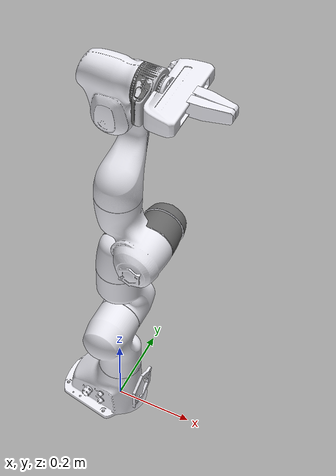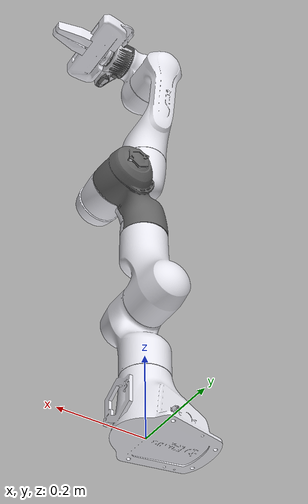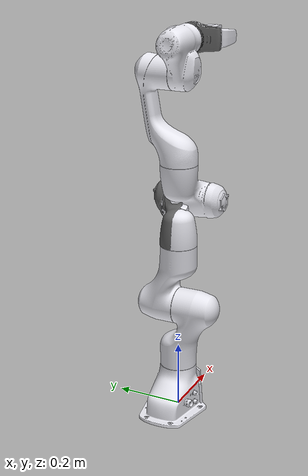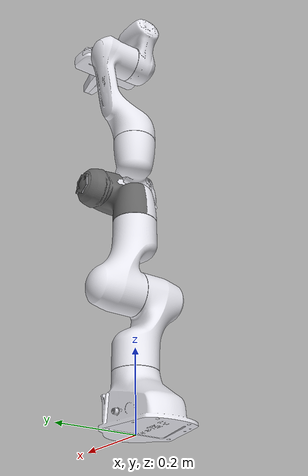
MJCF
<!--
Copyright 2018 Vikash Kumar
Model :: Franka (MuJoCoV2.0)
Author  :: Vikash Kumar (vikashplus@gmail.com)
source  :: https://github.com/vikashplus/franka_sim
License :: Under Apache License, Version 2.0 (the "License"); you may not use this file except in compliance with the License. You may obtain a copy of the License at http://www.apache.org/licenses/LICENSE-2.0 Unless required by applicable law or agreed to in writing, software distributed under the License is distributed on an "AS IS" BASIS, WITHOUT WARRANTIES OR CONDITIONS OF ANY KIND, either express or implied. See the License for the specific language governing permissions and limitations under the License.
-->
<mujoco model="franka_panda v200">
    <compiler angle="radian" meshdir=""/>
    <option timestep="0.002"/>
    <size nuser_actuator="5"/>

    <asset>
        <mesh name="link0_col" file="./meshes/collision/link0.stl"/>
        <mesh name="link1_col" file="./meshes/collision/link1.stl"/>
        <mesh name="link2_col" file="./meshes/collision/link2.stl"/>
        <mesh name="link3_col" file="./meshes/collision/link3.stl"/>
        <mesh name="link4_col" file="./meshes/collision/link4.stl"/>
        <mesh name="link5_col" file="./meshes/collision/link5.stl"/>
        <mesh name="link6_col" file="./meshes/collision/link6.stl"/>
        <mesh name="link7_col" file="./meshes/collision/link7.stl"/>
        <mesh name="hand_col" file="./meshes/collision/hand.stl"/>
        <mesh name="link0_viz" file="./meshes/visual/link0.stl"/>
        <mesh name="link1_viz" file="./meshes/visual/link1.stl"/>
        <mesh name="link2_viz" file="./meshes/visual/link2.stl"/>
        <mesh name="link3_viz" file="./meshes/visual/link3.stl"/>
        <mesh name="link3_dark_viz" file="./meshes/visual/link3_dark.stl" scale="1.01 1.01 1.01"/>
        <mesh name="link4_viz" file="./meshes/visual/link4.stl"/>
        <mesh name="link4_dark_viz" file="./meshes/visual/link4_dark.stl" scale="1.01 1.01 1.01"/>
        <mesh name="link5_viz" file="./meshes/visual/link5.stl"/>
        <mesh name="link5_dark_viz" file="./meshes/visual/link5_dark.stl" scale="1.01 1.01 1.01"/>
        <mesh name="link6_viz" file="./meshes/visual/link6.stl"/>
        <mesh name="link6_dark_viz" file="./meshes/visual/link6_dark.stl" scale="1.01 1.01 1.01"/>
        <mesh name="link7_viz" file="./meshes/visual/link7.stl"/>
        <mesh name="link7_dark_viz" file="./meshes/visual/link7_dark.stl" scale="1.01 1.01 1.01"/>
        <mesh name="hand_viz" file="./meshes/visual/hand.stl"/>

        <mesh name="finger_col" file="./meshes/collision/finger.stl" scale='1.75 1.0 1.75'/>
        <mesh name="finger_viz" file="./meshes/collision/finger.stl" scale='1.75 1.0 1.75'/>
    </asset>

    <default>
        <default class="panda">
            <joint pos="0 0 0" axis="0 0 1" limited="true"/>
            <position forcelimited="true" ctrllimited="true" user="1002 40 2001 -0.005 0.005"/>
            <default class="panda_viz">
                <geom contype="0" conaffinity="0" group="0" type="mesh" rgba=".92 .92 .95 1" mass="0"/>
            </default>
            <default class="panda_grey_viz">
                <geom contype="0" conaffinity="0" group="0" type="mesh" rgba=".4 .4 .4 1" mass="0"/>
            </default>

            <default class="panda_col">
                <geom contype="1" conaffinity="1" group="3" type="mesh" rgba=".5 .6 .7 1"/>
            </default>
            <default class="panda_arm">
                <joint damping="100"/>
            </default>
             <default class="panda_forearm">
                <joint damping="10"/>
            </default>
             <default class="panda_finger">
                <joint damping="100" armature='5'/>
                <geom friction="1 0.5 0.0001" solref="0.01 1" solimp="0.8 0.9 0.001" margin="0.001" user="0" rgba="0.5 0.6 0.7 .4" contype="1" conaffinity="0" condim="6" group="3" />
                <position user="1002 40 2001 -0.0001 0.0001"/>
            </default>
        </default>

        <default class="panda_overlay">
            <joint limited="false" damping="1000" armature="1" frictionloss="10"/>
            <geom contype="0" conaffinity="0" group="2" type="mesh" rgba=".42 0.42 0.42 .5"/>
        </default>
    </default>

    <sensor>
        <jointpos name="fr_arm_jp1" joint="panda0_joint1"/>
        <jointpos name="fr_arm_jp2" joint="panda0_joint2"/>
        <jointpos name="fr_arm_jp3" joint="panda0_joint3"/>
        <jointpos name="fr_arm_jp4" joint="panda0_joint4"/>
        <jointpos name="fr_arm_jp5" joint="panda0_joint5"/>
        <jointpos name="fr_arm_jp6" joint="panda0_joint6"/>
        <jointpos name="fr_arm_jp7" joint="panda0_joint7"/>
        <jointvel name="fr_arm_jv1" joint="panda0_joint1"/>
        <jointvel name="fr_arm_jv2" joint="panda0_joint2"/>
        <jointvel name="fr_arm_jv3" joint="panda0_joint3"/>
        <jointvel name="fr_arm_jv4" joint="panda0_joint4"/>
        <jointvel name="fr_arm_jv5" joint="panda0_joint5"/>
        <jointvel name="fr_arm_jv6" joint="panda0_joint6"/>
        <jointvel name="fr_arm_jv7" joint="panda0_joint7"/>

        <jointpos name="fr_fin_jp1" joint="panda0_finger_joint1"/>
        <jointpos name="fr_fin_jp2" joint="panda0_finger_joint2"/>
        <jointvel name="fr_fin_jv1" joint="panda0_finger_joint1"/>
        <jointvel name="fr_fin_jv2" joint="panda0_finger_joint2"/>
    </sensor>

    <worldbody>
        <body name="panda0_link0" childclass="panda" >
            <geom class="panda_viz" mesh="link0_viz"/>
            <geom class="panda_col" mesh="link0_col" mass="2.91242"/>
            <body name="panda0_link1" pos="0 0 0.333">
                <joint name="panda0_joint1" range="-2.8973 2.8973" class="panda_arm"/>
                <geom class="panda_viz" mesh="link1_viz"/>
                <geom class="panda_col" mesh="link1_col" mass="2.7063"/>
                <body name="panda0_link2" pos="0 0 0" quat="0.707107 -0.707107 0 0">
                    <joint name="panda0_joint2" range="-1.7628 1.7628" class="panda_arm"/>
                    <geom class="panda_viz" mesh="link2_viz"/>
                    <geom class="panda_col" mesh="link2_col" mass="2.73046"/>
                    <body name="panda0_link3" pos="0 -0.316 0" quat="0.707107 0.707107 0 0">
                        <joint name="panda0_joint3" range="-2.8973 2.8973" class="panda_arm"/>
                        <geom class="panda_viz" mesh="link3_viz"/>
                        <geom class="panda_grey_viz" mesh="link3_viz" pos="0 .001 0"/>
                        <geom class="panda_col" mesh="link3_col" mass="2.04104"/>
                        <body name="panda0_link4" pos="0.0825 0 0" quat="0.707107 0.707107 0 0">
                            <joint name="panda0_joint4" range="-3.0718 -0.4" class="panda_arm"/>
                            <geom class="panda_viz" mesh="link4_viz"/>
                            <geom class="panda_grey_viz" mesh="link4_viz"/>
                            <geom class="panda_col" mesh="link4_col" mass="2.08129"/>
                            <body name="panda0_link5" pos="-0.0825 0.384 0" quat="0.707107 -0.707107 0 0">
                                <joint name="panda0_joint5" range="-2.8973 2.8973" class="panda_forearm"/>
                                <geom class="panda_viz" mesh="link5_viz"/>
                                <geom class="panda_grey_viz" mesh="link5_viz"/>
                                <geom class="panda_col" mesh="link5_col" mass="3.00049"/>
                                <body name="panda0_link6" pos="0 0 0" euler='1.57 0 1.57'>
                                    <joint name="panda0_joint6" range="-1.6573 2.1127" class="panda_forearm"/>
                                    <geom class="panda_viz" mesh="link6_viz"/>
                                    <geom class="panda_grey_viz" mesh="link6_viz"/>
                                    <geom class="panda_col" mesh="link6_col" mass="1.3235"/>
                                    <body name="panda0_link7" pos="0.088 0 0" euler='1.57 0 0.7854'>
                                        <joint name="panda0_joint7" range="-2.8973 2.8973" class="panda_forearm"/>
                                        <geom class="panda_viz" mesh="link7_viz" rgba=".8 .8 .82 1"/>
                                        <geom class="panda_grey_viz" mesh="link7_viz" pos="0 0 -.0008"/>
                                        <geom class="panda_col" mesh="link7_col" mass="0.2"/>

                                        <!-- End Effector -->
                                        <body name="panda0_gripper">
                                            <geom pos="0 0 0.107" quat="0.92388 0 0 -0.382683" class="panda_viz" mesh="hand_viz"/>
                                            <geom pos="0 0 0.107" quat="0.92388 0 0 -0.382683" class="panda_col" mesh="hand_col" mass="0.81909"/>
                                            <site name='end_effector' pos='0 0 .210' size='0.01' euler='0 0 -0.785398'/>

                                            <body name="panda0_leftfinger" pos="0 0 0.1654" quat="0.92388 0 0 -0.382683" childclass='panda_finger'>
                                                <inertial pos="-1.57863e-05 0.0118731 0.0434103" quat="0.705868 0.0310348 -0.0314925 0.706962" mass="0.0927059" diaginertia="6.57134e-05 6.09611e-05 1.09932e-05" />
                                                <joint name="panda0_finger_joint1"  axis="0 1 0" type="slide" range="0 0.04" class="panda_finger"/>
                                                <geom class="panda_viz" mesh="finger_viz"/>
                                                <geom size="0.0070" fromto=".009 .006 .0875   -.009 .009 .0875" type="capsule" />
                                                <geom size="0.0070" fromto=".009 .009 .0875   -.009 .006 .0875" type="capsule" />

                                                <geom size="0.0075" fromto=".009 .007 .0775   -.009 .010 .0775" type="capsule" />
                                                <geom size="0.0075" fromto=".009 .010 .0775   -.009 .007 .0775" type="capsule" />

                                                <geom size="0.0082" fromto=".009 .008 .0675   -.009 .011 .0675" type="capsule" />
                                                <geom size="0.0082" fromto=".009 .011 .0675   -.009 .008 .0675" type="capsule" />

                                                <geom size="0.0090" fromto=".009 .009 .0575   -.009 .012 .0575" type="capsule" />
                                                <geom size="0.0090" fromto=".009 .012 .0575   -.009 .009 .0575" type="capsule" />

                                                <geom size="0.0100" fromto=".009 .0105 .0475   -.009 .0135 .0475" type="capsule" />
                                                <geom size="0.0100" fromto=".009 .0135 .0475   -.009 .0105 .0475" type="capsule" />

                                                <geom size="0.0110" fromto=".009 .012 .035   -.009 .015 .035" type="capsule" />
                                                <geom size="0.0110" fromto=".009 .015 .035   -.009 .012 .035" type="capsule" />

                                                <geom size="0.0185 0.0120 0.0175" pos="0 0.014 0.015" type="box" euler='.03 0 0' />

                                            </body>
                                            <body name="panda0_rightfinger" pos="0 0 0.1654" quat="0.92388 0 0 -0.382683"  childclass='panda_finger'>
                                                <inertial pos="1.57863e-05 -0.0118731 0.0434103" quat="0.705868 -0.0310348 0.0314925 0.706962" mass="0.0927059" diaginertia="6.57134e-05 6.09611e-05 1.09932e-05" />
                                                <joint name="panda0_finger_joint2" axis="0 -1 0" type="slide" range="0 0.04" class="panda_finger"/>
                                                <geom quat="0 0 0 1" class="panda_viz" mesh="finger_viz"/>
                                                <geom size="0.0070" fromto=".009 -.006 .0875   -.009 -.009 .0875" type="capsule" />
                                                <geom size="0.0070" fromto=".009 -.009 .0875   -.009 -.006 .0875" type="capsule" />

                                                <geom size="0.0075" fromto=".009 -.007 .0775   -.009 -.010 .0775" type="capsule" />
                                                <geom size="0.0075" fromto=".009 -.010 .0775   -.009 -.007 .0775" type="capsule" />

                                                <geom size="0.0082" fromto=".009 -.008 .0675   -.009 -.011 .0675" type="capsule" />
                                                <geom size="0.0082" fromto=".009 -.011 .0675   -.009 -.008 .0675" type="capsule" />

                                                <geom size="0.0090" fromto=".009 -.009 .0575   -.009 -.012 .0575" type="capsule" />
                                                <geom size="0.0090" fromto=".009 -.012 .0575   -.009 -.009 .0575" type="capsule" />

                                                <geom size="0.0100" fromto=".009 -.0105 .0475   -.009 -.0135 .0475" type="capsule" />
                                                <geom size="0.0100" fromto=".009 -.0135 .0475   -.009 -.0105 .0475" type="capsule" />

                                                <geom size="0.0110" fromto=".009 -.012 .035   -.009 -.015 .035" type="capsule" />
                                                <geom size="0.0110" fromto=".009 -.015 .035   -.009 -.012 .035" type="capsule" />

                                                <geom size="0.0185 0.0120 0.0175" pos="0 -.014 0.015" type="box" euler='-.03 0 0' />
                                            </body>
                                        </body>

                                    </body>
                                </body>
                            </body>
                        </body>
                    </body>
                </body>
            </body>
        </body>
    </worldbody>

    <actuator>
        <position name="panda0_joint1" joint="panda0_joint1" class="panda" kp="870" forcerange="-87 87" ctrlrange="-2.9671 2.9671"/> <!-- velocity="2.1750" -->
        <position name="panda0_joint2" joint="panda0_joint2" class="panda" kp="870" forcerange="-87 87" ctrlrange="-1.8326 1.8326"/> <!-- velocity="2.1750" -->
        <position name="panda0_joint3" joint="panda0_joint3" class="panda" kp="870" forcerange="-87 87" ctrlrange="-2.9671 2.9671"/> <!-- velocity="2.1750" -->
        <position name="panda0_joint4" joint="panda0_joint4" class="panda" kp="870" forcerange="-87 87" ctrlrange="-3.1416 0.0"/> <!-- velocity="2.1750" -->
        <position name="panda0_joint5" joint="panda0_joint5" class="panda" kp="120" forcerange="-12 12" ctrlrange="-2.9671 2.9671"/> <!-- velocity="2.6100" -->
        <position name="panda0_joint6" joint="panda0_joint6" class="panda" kp="120" forcerange="-12 12" ctrlrange="-1.66 2.1817"/> <!-- velocity="2.6100" -->
        <position name="panda0_joint7" joint="panda0_joint7" class="panda" kp="120" forcerange="-12 12" ctrlrange="-2.9671 2.9671"/> <!-- velocity="2.9671" -->
    </actuator>

</mujoco>
